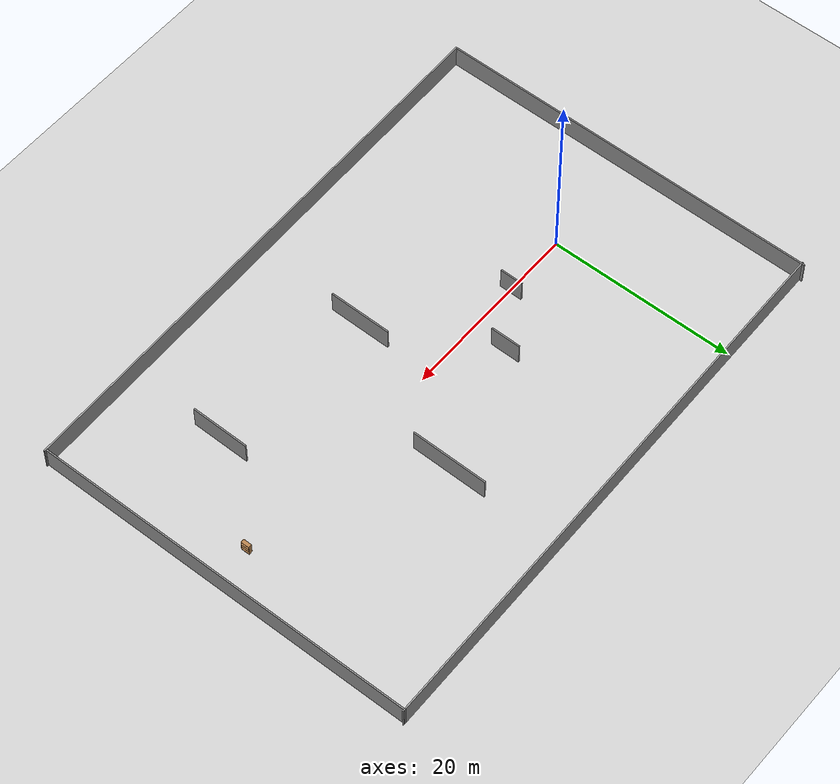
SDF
<sdf version="1.7">
 <world name="default">
  <light name="sun" type="directional">
   <pose>0 0 10 0 -0 0</pose>
   <diffuse>0.8 0.8 0.8 1</diffuse>
   <specular>0.2 0.2 0.2 1</specular>
   <attenuation>
    <range>1000</range>
    <constant>0.9</constant>
    <linear>0.01</linear>
    <quadratic>0.001</quadratic>
   </attenuation>
   <direction>-0.5 0.1 -0.9</direction>
   <spot><inner_angle>0</inner_angle><outer_angle>0</outer_angle><falloff>0</falloff></spot>
  </light>
  <model name="ground_plane">
   <static>1</static>
   <link name="link">
    <collision name="collision">
     <geometry><plane><normal>0 0 1</normal><size>100 100</size></plane></geometry>
     <surface>
      <contact><collide_bitmask>65535</collide_bitmask></contact>
      <friction><ode><mu>100</mu><mu2>50</mu2></ode></friction>
     </surface>
    </collision>
    <visual name="visual">
     <cast_shadows>0</cast_shadows>
     <geometry><plane><normal>0 0 1</normal><size>100 100</size></plane></geometry>
     <material>
      <script><uri>file://media/materials/scripts/gazebo.material</uri><name>Gazebo/Grey</name></script>
     </material>
    </visual>
   </link>
  </model>
  <gravity>0 0 -9.8</gravity>
  <magnetic_field>6e-06 2.3e-05 -4.2e-05</magnetic_field>
  <atmosphere type="adiabatic"/>
  <physics type="ode">
   <max_step_size>0.001</max_step_size>
   <real_time_factor>1</real_time_factor>
   <real_time_update_rate>1000</real_time_update_rate>
  </physics>
  <scene><ambient>0.4 0.4 0.4 1</ambient><background>0.7 0.7 0.7 1</background><shadows>1</shadows></scene>
  <audio><device>default</device></audio>
  <spherical_coordinates>
   <surface_model>EARTH_WGS84</surface_model>
   <latitude_deg>0</latitude_deg>
   <longitude_deg>0</longitude_deg>
   <elevation>0</elevation>
   <heading_deg>0</heading_deg>
  </spherical_coordinates>
  <model name="bookshelf">
   <static>1</static>
   <link name="link">
    <inertial><mass>1</mass></inertial>
    <collision name="back">
     <pose>0 0.005 0.6 0 -0 0</pose>
     <geometry><box><size>0.9 0.01 1.2</size></box></geometry>
    </collision>
    <visual name="visual1">
     <pose>0 0.005 0.6 0 -0 0</pose>
     <geometry><box><size>0.9 0.01 1.2</size></box></geometry>
     <material>
      <script><uri>file://media/materials/scripts/gazebo.material</uri><name>Gazebo/Wood</name></script>
     </material>
    </visual>
    <collision name="left_side">
     <pose>0.45 -0.195 0.6 0 -0 0</pose>
     <geometry><box><size>0.02 0.4 1.2</size></box></geometry>
    </collision>
    <visual name="visual2">
     <pose>0.45 -0.195 0.6 0 -0 0</pose>
     <geometry><box><size>0.02 0.4 1.2</size></box></geometry>
     <material>
      <script><uri>file://media/materials/scripts/gazebo.material</uri><name>Gazebo/Wood</name></script>
     </material>
    </visual>
    <collision name="right_side">
     <pose>-0.45 -0.195 0.6 0 -0 0</pose>
     <geometry><box><size>0.02 0.4 1.2</size></box></geometry>
    </collision>
    <visual name="visual3">
     <pose>-0.45 -0.195 0.6 0 -0 0</pose>
     <geometry><box><size>0.02 0.4 1.2</size></box></geometry>
     <material>
      <script><uri>file://media/materials/scripts/gazebo.material</uri><name>Gazebo/Wood</name></script>
     </material>
    </visual>
    <collision name="bottom">
     <pose>0 -0.195 0.03 0 -0 0</pose>
     <geometry><box><size>0.88 0.4 0.06</size></box></geometry>
    </collision>
    <visual name="visual4">
     <pose>0 -0.195 0.03 0 -0 0</pose>
     <geometry><box><size>0.88 0.4 0.06</size></box></geometry>
     <material>
      <script><uri>file://media/materials/scripts/gazebo.material</uri><name>Gazebo/Wood</name></script>
     </material>
    </visual>
    <collision name="top">
     <pose>0 -0.195 1.19 0 -0 0</pose>
     <geometry><box><size>0.88 0.4 0.02</size></box></geometry>
    </collision>
    <visual name="visual5">
     <pose>0 -0.195 1.19 0 -0 0</pose>
     <geometry><box><size>0.88 0.4 0.02</size></box></geometry>
     <material>
      <script><uri>file://media/materials/scripts/gazebo.material</uri><name>Gazebo/Wood</name></script>
     </material>
    </visual>
    <collision name="low_shelf">
     <pose>0 -0.195 0.43 0 -0 0</pose>
     <geometry><box><size>0.88 0.4 0.02</size></box></geometry>
    </collision>
    <visual name="visual6">
     <pose>0 -0.195 0.43 0 -0 0</pose>
     <geometry><box><size>0.88 0.4 0.02</size></box></geometry>
     <material>
      <script><uri>file://media/materials/scripts/gazebo.material</uri><name>Gazebo/Wood</name></script>
     </material>
    </visual>
    <collision name="high_shelf">
     <pose>0 -0.195 0.8 0 -0 0</pose>
     <geometry><box><size>0.88 0.4 0.02</size></box></geometry>
    </collision>
    <visual name="visual7">
     <pose>0 -0.195 0.8 0 -0 0</pose>
     <geometry><box><size>0.88 0.4 0.02</size></box></geometry>
     <material>
      <script><uri>file://media/materials/scripts/gazebo.material</uri><name>Gazebo/Wood</name></script>
     </material>
    </visual>
   </link>
   <pose>43.6183 -0.503538 0 0 -0 1.57611</pose>
  </model>
  <model name="basic_walls">
   <pose>20.4591 -0.209455 0 0 -0 3.13374</pose>
   <link name="Wall_0">
    <collision name="Wall_0_Collision">
     <geometry><box><size>2.5 0.15 2.5</size></box></geometry>
     <pose>0 0 1.25 0 -0 0</pose>
    </collision>
    <visual name="Wall_0_Visual">
     <pose>0 0 1.25 0 -0 0</pose>
     <geometry><box><size>2.5 0.15 2.5</size></box></geometry>
     <material>
      <script><uri>file://media/materials/scripts/gazebo.material</uri><name>Gazebo/Grey</name></script>
      <ambient>1 1 1 1</ambient>
     </material>
     <meta><layer>0</layer></meta>
    </visual>
    <pose>13.3259 -0.290719 0 0 -0 1.5708</pose>
   </link>
   <link name="Wall_2">
    <collision name="Wall_2_Collision">
     <geometry><box><size>3.25 0.15 2.5</size></box></geometry>
     <pose>0 0 1.25 0 -0 0</pose>
    </collision>
    <visual name="Wall_2_Visual">
     <pose>0 0 1.25 0 -0 0</pose>
     <geometry><box><size>3.25 0.15 2.5</size></box></geometry>
     <material>
      <script><uri>file://media/materials/scripts/gazebo.material</uri><name>Gazebo/Grey</name></script>
      <ambient>1 1 1 1</ambient>
     </material>
     <meta><layer>0</layer></meta>
    </visual>
    <pose>7.66927 -4.13501 0 0 -0 -1.5708</pose>
   </link>
   <link name="Wall_4">
    <collision name="Wall_4_Collision">
     <geometry><box><size>6.75 0.15 2.5</size></box></geometry>
     <pose>0 0 1.25 0 -0 0</pose>
    </collision>
    <visual name="Wall_4_Visual">
     <pose>0 0 1.25 0 -0 0</pose>
     <geometry><box><size>6.75 0.15 2.5</size></box></geometry>
     <material>
      <script><uri>file://media/materials/scripts/gazebo.material</uri><name>Gazebo/Grey</name></script>
      <ambient>1 1 1 1</ambient>
     </material>
     <meta><layer>0</layer></meta>
    </visual>
    <pose>1.25139 7.91178 0 0 -0 1.5708</pose>
   </link>
   <link name="Wall_6">
    <collision name="Wall_6_Collision">
     <geometry><box><size>8.25 0.15 2.5</size></box></geometry>
     <pose>0 0 1.25 0 -0 0</pose>
    </collision>
    <visual name="Wall_6_Visual">
     <pose>0 0 1.25 0 -0 0</pose>
     <geometry><box><size>8.25 0.15 2.5</size></box></geometry>
     <material>
      <script><uri>file://media/materials/scripts/gazebo.material</uri><name>Gazebo/Grey</name></script>
      <ambient>1 1 1 1</ambient>
     </material>
     <meta><layer>0</layer></meta>
    </visual>
    <pose>-5.65043 -8.42664 0 0 -0 -1.5708</pose>
   </link>
   <link name="Wall_8">
    <collision name="Wall_8_Collision">
     <geometry><box><size>6.25 0.15 2.5</size></box></geometry>
     <pose>0 0 1.25 0 -0 0</pose>
    </collision>
    <visual name="Wall_8_Visual">
     <pose>0 0 1.25 0 -0 0</pose>
     <geometry><box><size>6.25 0.15 2.5</size></box></geometry>
     <material>
      <script><uri>file://media/materials/scripts/gazebo.material</uri><name>Gazebo/Grey</name></script>
      <ambient>1 1 1 1</ambient>
     </material>
     <meta><layer>0</layer></meta>
    </visual>
    <pose>-16.3509 9.42664 0 0 -0 -1.5708</pose>
   </link>
   <static>1</static>
  </model>
  <model name="closed_room_w_basic_walls">
   <pose>18.6259 -0.029923 0 0 -0 0</pose>
   <link name="Wall_0">
    <collision name="Wall_0_Collision">
     <geometry><box><size>41.75 0.15 2.5</size></box></geometry>
     <pose>0 0 1.25 0 -0 0</pose>
    </collision>
    <visual name="Wall_0_Visual">
     <pose>0 0 1.25 0 -0 0</pose>
     <geometry><box><size>41.75 0.15 2.5</size></box></geometry>
     <material>
      <script><uri>file://media/materials/scripts/gazebo.material</uri><name>Gazebo/Grey</name></script>
      <ambient>1 1 1 1</ambient>
     </material>
     <meta><layer>0</layer></meta>
    </visual>
    <pose>-29.7636 -0.371893 0 0 -0 -1.5708</pose>
   </link>
   <link name="Wall_1">
    <collision name="Wall_1_Collision">
     <geometry><box><size>59.7709 0.15 2.5</size></box></geometry>
     <pose>0 0 1.25 0 -0 0</pose>
    </collision>
    <visual name="Wall_1_Visual">
     <pose>0 0 1.25 0 -0 0</pose>
     <geometry><box><size>59.7709 0.15 2.5</size></box></geometry>
     <material>
      <script><uri>file://media/materials/scripts/gazebo.material</uri><name>Gazebo/Grey</name></script>
      <ambient>1 1 1 1</ambient>
     </material>
     <meta><layer>0</layer></meta>
    </visual>
    <pose>0.042705 -20.6781 0 0 -0 0.016565</pose>
   </link>
   <link name="Wall_2">
    <collision name="Wall_2_Collision">
     <geometry><box><size>41.5065 0.15 2.5</size></box></geometry>
     <pose>0 0 1.25 0 -0 0</pose>
    </collision>
    <visual name="Wall_2_Visual">
     <pose>0 0 1.25 0 -0 0</pose>
     <geometry><box><size>41.5065 0.15 2.5</size></box></geometry>
     <material>
      <script><uri>file://media/materials/scripts/gazebo.material</uri><name>Gazebo/Grey</name></script>
      <ambient>1 1 1 1</ambient>
     </material>
     <meta><layer>0</layer></meta>
    </visual>
    <pose>29.6022 0.493784 0 0 -0 1.57478</pose>
   </link>
   <link name="Wall_3">
    <collision name="Wall_3_Collision">
     <geometry><box><size>59.6917 0.15 2.5</size></box></geometry>
     <pose>0 0 1.25 0 -0 0</pose>
    </collision>
    <visual name="Wall_3_Visual">
     <pose>0 0 1.25 0 -0 0</pose>
     <geometry><box><size>59.6917 0.15 2.5</size></box></geometry>
     <material>
      <script><uri>file://media/materials/scripts/gazebo.material</uri><name>Gazebo/Grey</name></script>
      <ambient>1 1 1 1</ambient>
     </material>
     <meta><layer>0</layer></meta>
    </visual>
    <pose>-0.082295 20.6781 0 0 -0 -3.12501</pose>
   </link>
   <static>1</static>
  </model>
 </world>
</sdf>
